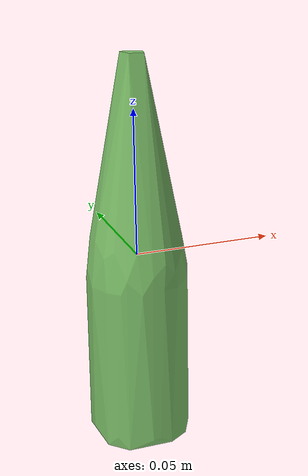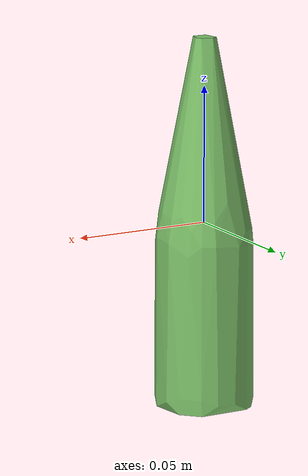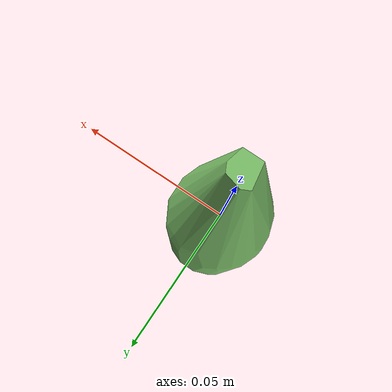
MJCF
<mujoco model="shapenetsem32">
  <asset>
    <mesh file="meshes/shapenetsem32/shapenetsem32_0.stl" name="shapenetsem32_0" scale="0.9 0.9 0.9"/>
    <texture file="../textures/texture32-0.png" type="2d" name="tex-sem32"/>
    <material name="sem32" reflectance="0.7" texrepeat="90 90" texture="tex-sem32" texuniform="true"/>
  </asset>
  <worldbody>
    <body>
      <body name="collision">
        <geom pos="0 0 0" mesh="shapenetsem32_0" type="mesh" solimp="0.998 0.998 0.001" solref="0.001 1" density="100" friction="0.95 0.3 0.1" rgba="0.5 0.77 0.42 1" group="1" condim="4"/>
      </body>
      <body name="visual">
        <geom pos="0 0 0" mesh="shapenetsem32_0" type="mesh" rgba="0 1 0 1" conaffinity="0" contype="0" group="0" mass="0.0001"/>
      </body>
      <site rgba="0 0 0 0" size="0.005" pos="0 0 -0.06" name="bottom_site"/>
      <site rgba="0 0 0 0" size="0.005" pos="0 0 0.04" name="top_site"/>
      <site rgba="0 0 0 0" size="0.005" pos="0.025 0.025 0" name="horizontal_radius_site"/>
    </body>
  </worldbody>
</mujoco>
